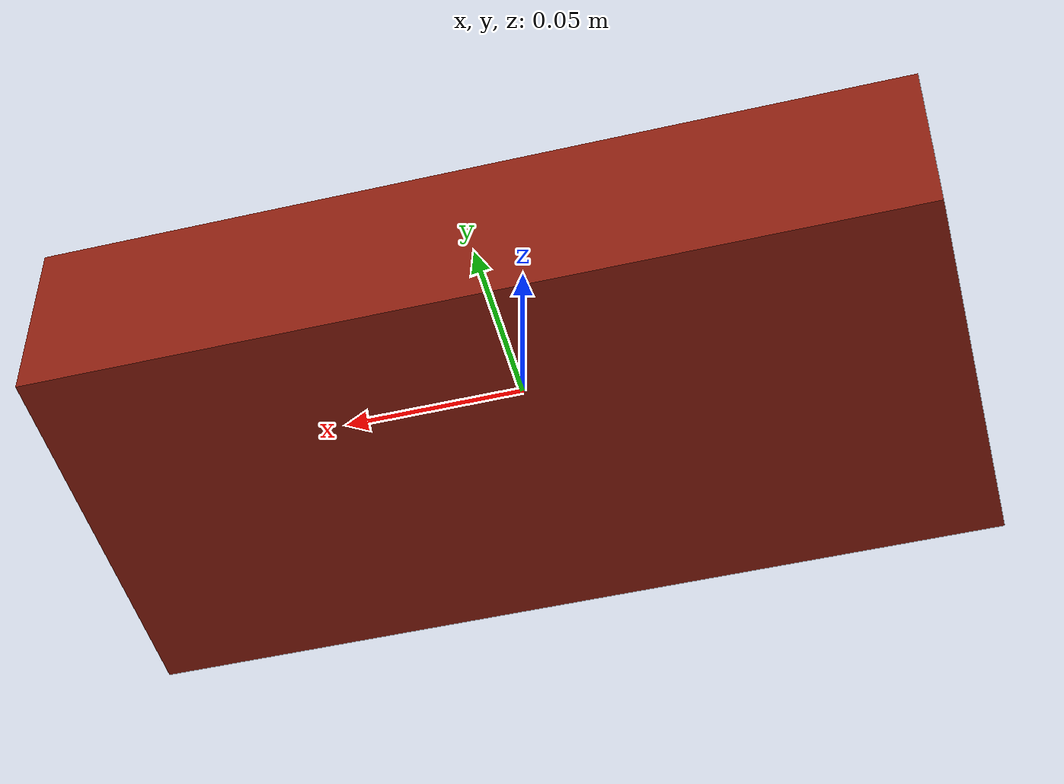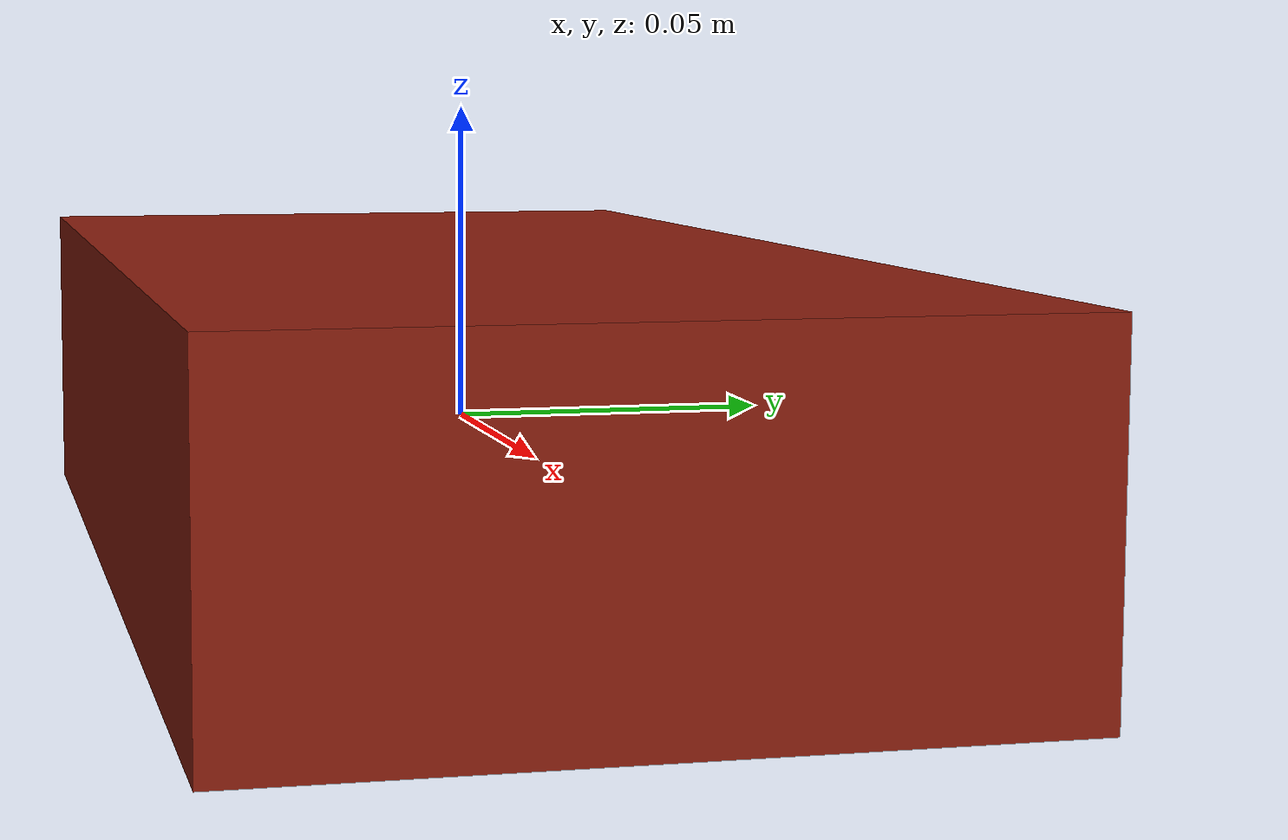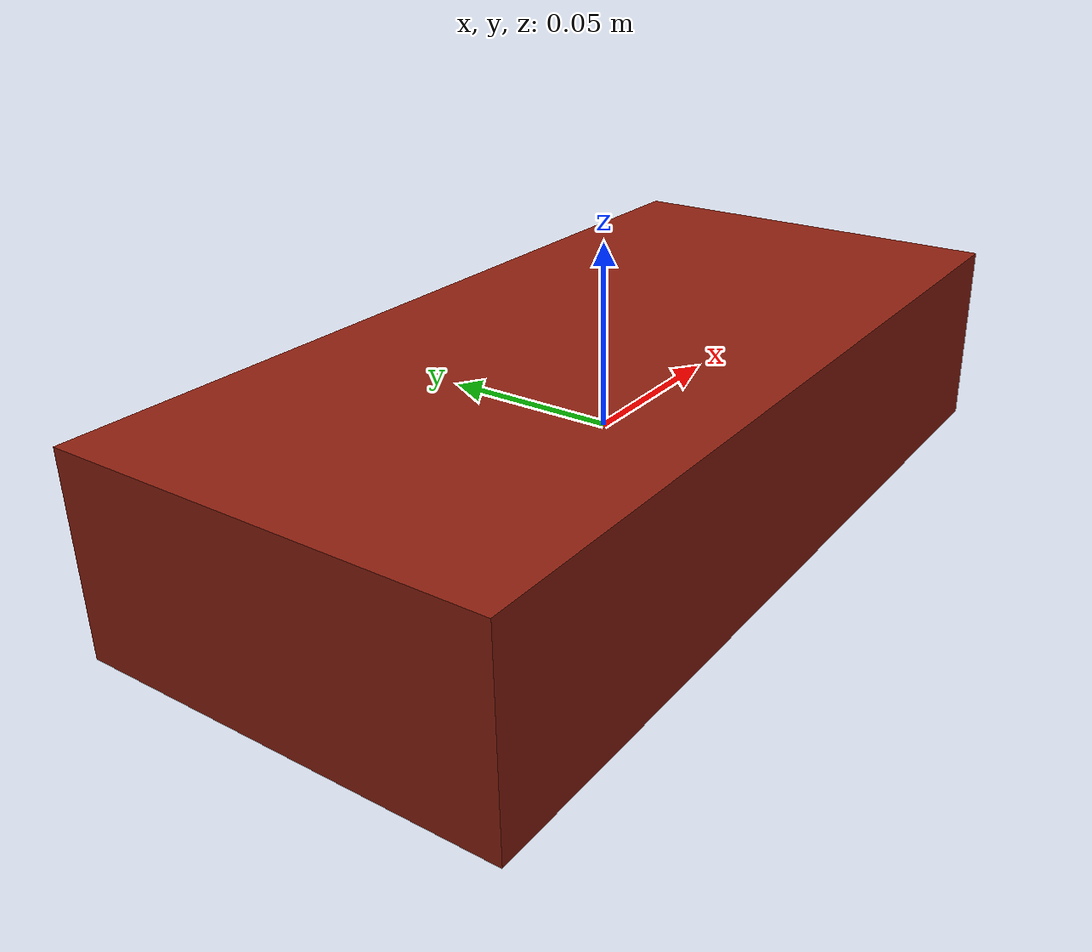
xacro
<?xml version="1.0"?>
<robot name="brick" xmlns:xacro="http://www.ros.org/wiki/xacro">
  <xacro:arg name="length" default="0.240"/>
  <xacro:arg name="width" default="0.115"/>
  <xacro:arg name="height" default="0.053"/>
  <xacro:arg name="mass" default="2.5"/>
  <xacro:arg name="orientation_mode" default="flat"/>
  <xacro:property name="l" value="$(arg length)"/>
  <xacro:property name="nominal_w" value="$(arg width)"/>
  <xacro:property name="nominal_h" value="$(arg height)"/>
  <xacro:property name="orientation_mode" value="$(arg orientation_mode)"/>
  <xacro:property name="w"
                  value="${nominal_w if orientation_mode == 'flat' else nominal_h if orientation_mode == 'side_up' else 1.0 / 0.0}"/>
  <xacro:property name="h"
                  value="${nominal_h if orientation_mode == 'flat' else nominal_w if orientation_mode == 'side_up' else 1.0 / 0.0}"/>
  <xacro:property name="m" value="$(arg mass)"/>

  <link name="brick_link">
    <inertial>
      <origin xyz="0 0 0" rpy="0 0 0"/>
      <mass value="${m}"/>
      <inertia ixx="${m * (w*w + h*h) / 12.0}" ixy="0" ixz="0"
               iyy="${m * (l*l + h*h) / 12.0}" iyz="0"
               izz="${m * (l*l + w*w) / 12.0}"/>
    </inertial>
    <visual>
      <geometry><box size="${l} ${w} ${h}"/></geometry>
      <material name="brick_red"><color rgba="0.55 0.12 0.06 1"/></material>
    </visual>
    <collision><geometry><box size="${l} ${w} ${h}"/></geometry></collision>
  </link>
  <gazebo reference="brick_link">
    <material>Gazebo/Red</material>
    <gravity>true</gravity>
    <mu1>1.2</mu1><mu2>1.2</mu2>
    <kp>1000000.0</kp><kd>10.0</kd>
    <minDepth>0.001</minDepth><maxVel>0.02</maxVel>
  </gazebo>
</robot>
